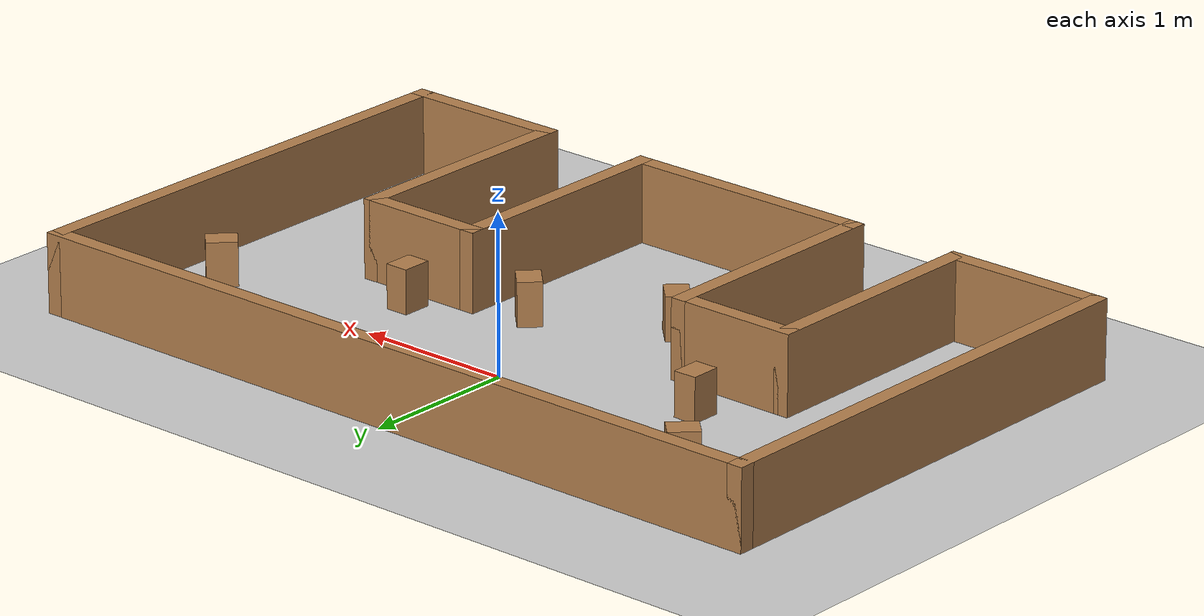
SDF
<sdf version='1.7'>
  <world name='default'>
    <!-- A global light source -->
    <include>
      <uri>model://sun</uri>
    </include>

    <!-- A ground plane -->
    <include>
      <uri>model://ground_plane</uri>
    </include>

    <physics type="ode">
      <real_time_update_rate>0.0</real_time_update_rate>
      <max_step_size>0.003</max_step_size>
      <ode>
        <solver>
          <type>quick</type>
          <iters>150</iters>
          <precon_iters>0</precon_iters>
          <sor>1.400000</sor>
          <use_dynamic_moi_rescaling>1</use_dynamic_moi_rescaling>
        </solver>
        <constraints>
          <cfm>0.00001</cfm>
          <erp>0.2</erp>
          <contact_max_correcting_vel>2000.000000</contact_max_correcting_vel>
          <contact_surface_layer>0.01000</contact_surface_layer>
        </constraints>
      </ode>
    </physics>

    <!-- Load model -->
    <include>
      <uri>model://new_stage_5_3m_1</uri>
    </include>

    <model name='cube'>
      <pose>-0.348447 -1.14023 0 0 0 -0.789999</pose>
      <link name='Wall_28'>
        <collision name='Wall_28_Collision'>
          <geometry>
            <box>
              <size>0.19 0.15 0.28</size>
            </box>
          </geometry>
          <pose>0 0 0.14 0 -0 0</pose>
          <max_contacts>10</max_contacts>
          <surface>
            <contact>
              <ode/>
            </contact>
            <bounce/>
            <friction>
              <torsional>
                <ode/>
              </torsional>
              <ode/>
            </friction>
          </surface>
        </collision>
        <visual name='Wall_28_Visual'>
          <pose>0 0 0.14 0 -0 0</pose>
          <geometry>
            <box>
              <size>0.19 0.15 0.28</size>
            </box>
          </geometry>
          <material>
            <script>
              <uri>file://media/materials/scripts/gazebo.material</uri>
              <name>Gazebo/Wood</name>
            </script>
            <ambient>1 0.764706 0.305882 1</ambient>
          </material>
          <meta>
            <layer>0</layer>
          </meta>
        </visual>
        <pose>0 0 0 0 -0 0</pose>
        <self_collide>0</self_collide>
        <enable_wind>0</enable_wind>
        <kinematic>0</kinematic>
      </link>
      <static>1</static>
    </model>
    <model name='cube_0'>
      <pose>0.432871 -0.745896 0 0 0 -0.79</pose>
      <link name='Wall_28'>
        <collision name='Wall_28_Collision'>
          <geometry>
            <box>
              <size>0.19 0.15 0.28</size>
            </box>
          </geometry>
          <pose>0 0 0.14 0 -0 0</pose>
          <max_contacts>10</max_contacts>
          <surface>
            <contact>
              <ode/>
            </contact>
            <bounce/>
            <friction>
              <torsional>
                <ode/>
              </torsional>
              <ode/>
            </friction>
          </surface>
        </collision>
        <visual name='Wall_28_Visual'>
          <pose>0 0 0.14 0 -0 0</pose>
          <geometry>
            <box>
              <size>0.19 0.15 0.28</size>
            </box>
          </geometry>
          <material>
            <script>
              <uri>file://media/materials/scripts/gazebo.material</uri>
              <name>Gazebo/Wood</name>
            </script>
            <ambient>1 0.764706 0.305882 1</ambient>
          </material>
          <meta>
            <layer>0</layer>
          </meta>
        </visual>
        <pose>0 0 0 0 -0 0</pose>
        <self_collide>0</self_collide>
        <enable_wind>0</enable_wind>
        <kinematic>0</kinematic>
      </link>
      <static>1</static>
    </model>
    <model name='cube_1'>
      <pose>-1.67076 0.364015 0 0 -0 0.79</pose>
      <link name='Wall_28'>
        <collision name='Wall_28_Collision'>
          <geometry>
            <box>
              <size>0.19 0.15 0.28</size>
            </box>
          </geometry>
          <pose>0 0 0.14 0 -0 0</pose>
          <max_contacts>10</max_contacts>
          <surface>
            <contact>
              <ode/>
            </contact>
            <bounce/>
            <friction>
              <torsional>
                <ode/>
              </torsional>
              <ode/>
            </friction>
          </surface>
        </collision>
        <visual name='Wall_28_Visual'>
          <pose>0 0 0.14 0 -0 0</pose>
          <geometry>
            <box>
              <size>0.19 0.15 0.28</size>
            </box>
          </geometry>
          <material>
            <script>
              <uri>file://media/materials/scripts/gazebo.material</uri>
              <name>Gazebo/Wood</name>
            </script>
            <ambient>1 0.764706 0.305882 1</ambient>
          </material>
          <meta>
            <layer>0</layer>
          </meta>
        </visual>
        <pose>0 0 0 0 -0 0</pose>
        <self_collide>0</self_collide>
        <enable_wind>0</enable_wind>
        <kinematic>0</kinematic>
      </link>
      <static>1</static>
    </model>
    <model name='cube_2'>
      <pose>-1.19313 -0.30587 0 0 -0 1.57</pose>
      <link name='Wall_28'>
        <collision name='Wall_28_Collision'>
          <geometry>
            <box>
              <size>0.19 0.15 0.28</size>
            </box>
          </geometry>
          <pose>0 0 0.14 0 -0 0</pose>
          <max_contacts>10</max_contacts>
          <surface>
            <contact>
              <ode/>
            </contact>
            <bounce/>
            <friction>
              <torsional>
                <ode/>
              </torsional>
              <ode/>
            </friction>
          </surface>
        </collision>
        <visual name='Wall_28_Visual'>
          <pose>0 0 0.14 0 -0 0</pose>
          <geometry>
            <box>
              <size>0.19 0.15 0.28</size>
            </box>
          </geometry>
          <material>
            <script>
              <uri>file://media/materials/scripts/gazebo.material</uri>
              <name>Gazebo/Wood</name>
            </script>
            <ambient>1 0.764706 0.305882 1</ambient>
          </material>
          <meta>
            <layer>0</layer>
          </meta>
        </visual>
        <pose>0 0 0 0 -0 0</pose>
        <self_collide>0</self_collide>
        <enable_wind>0</enable_wind>
        <kinematic>0</kinematic>
      </link>
      <static>1</static>
    </model>
    <model name='cube_3'>
      <pose>-0.009397 0.598782 0 0 -0 0</pose>
      <link name='Wall_28'>
        <collision name='Wall_28_Collision'>
          <geometry>
            <box>
              <size>0.19 0.15 0.28</size>
            </box>
          </geometry>
          <pose>0 0 0.14 0 -0 0</pose>
          <max_contacts>10</max_contacts>
          <surface>
            <contact>
              <ode/>
            </contact>
            <bounce/>
            <friction>
              <torsional>
                <ode/>
              </torsional>
              <ode/>
            </friction>
          </surface>
        </collision>
        <visual name='Wall_28_Visual'>
          <pose>0 0 0.14 0 -0 0</pose>
          <geometry>
            <box>
              <size>0.19 0.15 0.28</size>
            </box>
          </geometry>
          <material>
            <script>
              <uri>file://media/materials/scripts/gazebo.material</uri>
              <name>Gazebo/Wood</name>
            </script>
            <ambient>1 0.764706 0.305882 1</ambient>
          </material>
          <meta>
            <layer>0</layer>
          </meta>
        </visual>
        <pose>0 0 0 0 -0 0</pose>
        <self_collide>0</self_collide>
        <enable_wind>0</enable_wind>
        <kinematic>0</kinematic>
      </link>
      <static>1</static>
    </model>
    <model name='cube_4'>
      <pose>1.10326 -0.444251 0 0 -0 1.57</pose>
      <link name='Wall_28'>
        <collision name='Wall_28_Collision'>
          <geometry>
            <box>
              <size>0.19 0.15 0.28</size>
            </box>
          </geometry>
          <pose>0 0 0.14 0 -0 0</pose>
          <max_contacts>10</max_contacts>
          <surface>
            <contact>
              <ode/>
            </contact>
            <bounce/>
            <friction>
              <torsional>
                <ode/>
              </torsional>
              <ode/>
            </friction>
          </surface>
        </collision>
        <visual name='Wall_28_Visual'>
          <pose>0 0 0.14 0 -0 0</pose>
          <geometry>
            <box>
              <size>0.19 0.15 0.28</size>
            </box>
          </geometry>
          <material>
            <script>
              <uri>file://media/materials/scripts/gazebo.material</uri>
              <name>Gazebo/Wood</name>
            </script>
            <ambient>1 0.764706 0.305882 1</ambient>
          </material>
          <meta>
            <layer>0</layer>
          </meta>
        </visual>
        <pose>0 0 0 0 -0 0</pose>
        <self_collide>0</self_collide>
        <enable_wind>0</enable_wind>
        <kinematic>0</kinematic>
      </link>
      <static>1</static>
    </model>
    <model name='cube_5'>
      <pose>2.1808 -0.018845 0 0 -0 0.79</pose>
      <link name='Wall_28'>
        <collision name='Wall_28_Collision'>
          <geometry>
            <box>
              <size>0.19 0.15 0.28</size>
            </box>
          </geometry>
          <pose>0 0 0.14 0 -0 0</pose>
          <max_contacts>10</max_contacts>
          <surface>
            <contact>
              <ode/>
            </contact>
            <bounce/>
            <friction>
              <torsional>
                <ode/>
              </torsional>
              <ode/>
            </friction>
          </surface>
        </collision>
        <visual name='Wall_28_Visual'>
          <pose>0 0 0.14 0 -0 0</pose>
          <geometry>
            <box>
              <size>0.19 0.15 0.28</size>
            </box>
          </geometry>
          <material>
            <script>
              <uri>file://media/materials/scripts/gazebo.material</uri>
              <name>Gazebo/Wood</name>
            </script>
            <ambient>1 0.764706 0.305882 1</ambient>
          </material>
          <meta>
            <layer>0</layer>
          </meta>
        </visual>
        <pose>0 0 0 0 -0 0</pose>
        <self_collide>0</self_collide>
        <enable_wind>0</enable_wind>
        <kinematic>0</kinematic>
      </link>
      <static>1</static>
    </model>

    <scene>
      <ambient>0.4 0.4 0.4 1</ambient>
      <background>0.7 0.7 0.7 1</background>
      <shadows>false</shadows>
    </scene>

    <gui fullscreen='0'>
      <camera name='user_camera'>
        <pose>-1.58359 -3.62535 12.9428 -0 1.3378 1.58423</pose>
        <view_controller>orbit</view_controller>
        <projection_type>perspective</projection_type>
      </camera>
    </gui>
  </world>
</sdf>

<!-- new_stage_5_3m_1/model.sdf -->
<sdf version='1.6'>
  <model name='new_stage_5_3m_1'>
  <pose>0 0 0 0 -0 0</pose>
    <link name='Wall_0'>
      <collision name='Wall_0_Collision'>
        <geometry>
          <box>
            <size>5.2 0.1 0.5</size>
          </box>
        </geometry>
        <pose>0 0 0.25 0 -0 0</pose>
      </collision>
      <visual name='Wall_0_Visual'>
        <pose>0 0 0.25 0 -0 0</pose>
        <geometry>
          <box>
            <size>5.2 0.1 0.5</size>
          </box>
        </geometry>
        <material>
          <script>
            <uri>file://media/materials/scripts/gazebo.material</uri>
            <name>Gazebo/Wood</name>
          </script>
          <ambient>1 0.764706 0.305882 1</ambient>
        </material>
      </visual>
      <pose>-0 0.935 0 0 -0 0</pose>
    </link>
    <link name='Wall_10'>
      <collision name='Wall_10_Collision'>
        <geometry>
          <box>
            <size>1.6 0.1 0.5</size>
          </box>
        </geometry>
        <pose>0 0 0.25 0 -0 0</pose>
      </collision>
      <visual name='Wall_10_Visual'>
        <pose>0 0 0.25 0 -0 0</pose>
        <geometry>
          <box>
            <size>1.6 0.1 0.5</size>
          </box>
        </geometry>
        <material>
          <script>
            <uri>file://media/materials/scripts/gazebo.material</uri>
            <name>Gazebo/Wood</name>
          </script>
          <ambient>1 0.764706 0.305882 1</ambient>
        </material>
      </visual>
      <pose>-0.8 -1.415 0 0 -0 -1.5708</pose>
    </link>
    <link name='Wall_12'>
      <collision name='Wall_12_Collision'>
        <geometry>
          <box>
            <size>1.7 0.1 0.5</size>
          </box>
        </geometry>
        <pose>0 0 0.25 0 -0 0</pose>
      </collision>
      <visual name='Wall_12_Visual'>
        <pose>0 0 0.25 0 -0 0</pose>
        <geometry>
          <box>
            <size>1.7 0.1 0.5</size>
          </box>
        </geometry>
        <material>
          <script>
            <uri>file://media/materials/scripts/gazebo.material</uri>
            <name>Gazebo/Wood</name>
          </script>
          <ambient>1 0.764706 0.305882 1</ambient>
        </material>
      </visual>
      <pose>-0 -2.165 0 0 -0 0</pose>
    </link>
    <link name='Wall_14'>
      <collision name='Wall_14_Collision'>
        <geometry>
          <box>
            <size>1.6 0.1 0.5</size>
          </box>
        </geometry>
        <pose>0 0 0.25 0 -0 0</pose>
      </collision>
      <visual name='Wall_14_Visual'>
        <pose>0 0 0.25 0 -0 0</pose>
        <geometry>
          <box>
            <size>1.6 0.1 0.5</size>
          </box>
        </geometry>
        <material>
          <script>
            <uri>file://media/materials/scripts/gazebo.material</uri>
            <name>Gazebo/Wood</name>
          </script>
          <ambient>1 0.764706 0.305882 1</ambient>
        </material>
      </visual>
      <pose>0.8 -1.415 0 0 -0 1.5708</pose>
    </link>
    <link name='Wall_16'>
      <collision name='Wall_16_Collision'>
        <geometry>
          <box>
            <size>0.85 0.1 0.5</size>
          </box>
        </geometry>
        <pose>0 0 0.25 0 -0 0</pose>
      </collision>
      <visual name='Wall_16_Visual'>
        <pose>0 0 0.25 0 -0 0</pose>
        <geometry>
          <box>
            <size>0.85 0.1 0.5</size>
          </box>
        </geometry>
        <material>
          <script>
            <uri>file://media/materials/scripts/gazebo.material</uri>
            <name>Gazebo/Wood</name>
          </script>
          <ambient>1 0.764706 0.305882 1</ambient>
        </material>
      </visual>
      <pose>1.175 -0.665 0 0 -0 0</pose>
    </link>
    <link name='Wall_18'>
      <collision name='Wall_18_Collision'>
        <geometry>
          <box>
            <size>1.6 0.1 0.5</size>
          </box>
        </geometry>
        <pose>0 0 0.25 0 -0 0</pose>
      </collision>
      <visual name='Wall_18_Visual'>
        <pose>0 0 0.25 0 -0 0</pose>
        <geometry>
          <box>
            <size>1.6 0.1 0.5</size>
          </box>
        </geometry>
        <material>
          <script>
            <uri>file://media/materials/scripts/gazebo.material</uri>
            <name>Gazebo/Wood</name>
          </script>
          <ambient>1 0.764706 0.305882 1</ambient>
        </material>
      </visual>
      <pose>1.55 -1.415 0 0 -0 -1.5708</pose>
    </link>
    <link name='Wall_2'>
      <collision name='Wall_2_Collision'>
        <geometry>
          <box>
            <size>3.2 0.1 0.5</size>
          </box>
        </geometry>
        <pose>0 0 0.25 0 -0 0</pose>
      </collision>
      <visual name='Wall_2_Visual'>
        <pose>0 0 0.25 0 -0 0</pose>
        <geometry>
          <box>
            <size>3.2 0.1 0.5</size>
          </box>
        </geometry>
        <material>
          <script>
            <uri>file://media/materials/scripts/gazebo.material</uri>
            <name>Gazebo/Wood</name>
          </script>
          <ambient>1 0.764706 0.305882 1</ambient>
        </material>
      </visual>
      <pose>-2.55 -0.615 0 0 -0 -1.5708</pose>
    </link>
    <link name='Wall_20'>
      <collision name='Wall_20_Collision'>
        <geometry>
          <box>
            <size>1.1 0.1 0.5</size>
          </box>
        </geometry>
        <pose>0 0 0.25 0 -0 0</pose>
      </collision>
      <visual name='Wall_20_Visual'>
        <pose>0 0 0.25 0 -0 0</pose>
        <geometry>
          <box>
            <size>1.1 0.1 0.5</size>
          </box>
        </geometry>
        <material>
          <script>
            <uri>file://media/materials/scripts/gazebo.material</uri>
            <name>Gazebo/Wood</name>
          </script>
          <ambient>1 0.764706 0.305882 1</ambient>
        </material>
      </visual>
      <pose>2.05 -2.165 0 0 -0 0</pose>
    </link>
    <link name='Wall_22'>
      <collision name='Wall_22_Collision'>
        <geometry>
          <box>
            <size>3.2 0.1 0.5</size>
          </box>
        </geometry>
        <pose>0 0 0.25 0 -0 0</pose>
      </collision>
      <visual name='Wall_22_Visual'>
        <pose>0 0 0.25 0 -0 0</pose>
        <geometry>
          <box>
            <size>3.2 0.1 0.5</size>
          </box>
        </geometry>
        <material>
          <script>
            <uri>file://media/materials/scripts/gazebo.material</uri>
            <name>Gazebo/Wood</name>
          </script>
          <ambient>1 0.764706 0.305882 1</ambient>
        </material>
      </visual>
      <pose>2.55 -0.615 0 0 -0 -1.5708</pose>
    </link>
    <link name='Wall_4'>
      <collision name='Wall_4_Collision'>
        <geometry>
          <box>
            <size>1.1 0.1 0.5</size>
          </box>
        </geometry>
        <pose>0 0 0.25 0 -0 0</pose>
      </collision>
      <visual name='Wall_4_Visual'>
        <pose>0 0 0.25 0 -0 0</pose>
        <geometry>
          <box>
            <size>1.1 0.1 0.5</size>
          </box>
        </geometry>
        <material>
          <script>
            <uri>file://media/materials/scripts/gazebo.material</uri>
            <name>Gazebo/Wood</name>
          </script>
          <ambient>1 0.764706 0.305882 1</ambient>
        </material>
      </visual>
      <pose>-2.05 -2.165 0 0 -0 0</pose>
    </link>
    <link name='Wall_6'>
      <collision name='Wall_6_Collision'>
        <geometry>
          <box>
            <size>1.6 0.1 0.5</size>
          </box>
        </geometry>
        <pose>0 0 0.25 0 -0 0</pose>
      </collision>
      <visual name='Wall_6_Visual'>
        <pose>0 0 0.25 0 -0 0</pose>
        <geometry>
          <box>
            <size>1.6 0.1 0.5</size>
          </box>
        </geometry>
        <material>
          <script>
            <uri>file://media/materials/scripts/gazebo.material</uri>
            <name>Gazebo/Wood</name>
          </script>
          <ambient>1 0.764706 0.305882 1</ambient>
        </material>
      </visual>
      <pose>-1.55 -1.415 0 0 -0 1.5708</pose>
    </link>
    <link name='Wall_8'>
      <collision name='Wall_8_Collision'>
        <geometry>
          <box>
            <size>0.85 0.1 0.5</size>
          </box>
        </geometry>
        <pose>0 0 0.25 0 -0 0</pose>
      </collision>
      <visual name='Wall_8_Visual'>
        <pose>0 0 0.25 0 -0 0</pose>
        <geometry>
          <box>
            <size>0.85 0.1 0.5</size>
          </box>
        </geometry>
        <material>
          <script>
            <uri>file://media/materials/scripts/gazebo.material</uri>
            <name>Gazebo/Wood</name>
          </script>
          <ambient>1 0.764706 0.305882 1</ambient>
        </material>
      </visual>
      <pose>-1.175 -0.665 0 0 -0 0</pose>
    </link>
    <static>1</static>
  </model>
</sdf>
